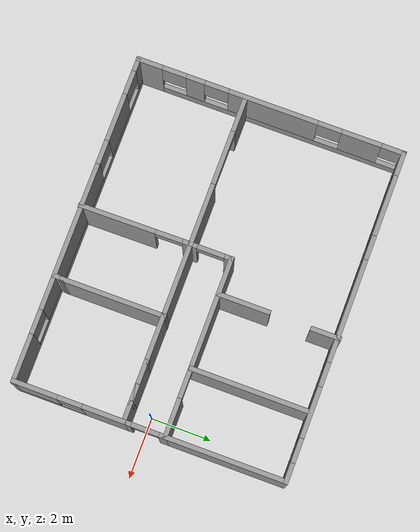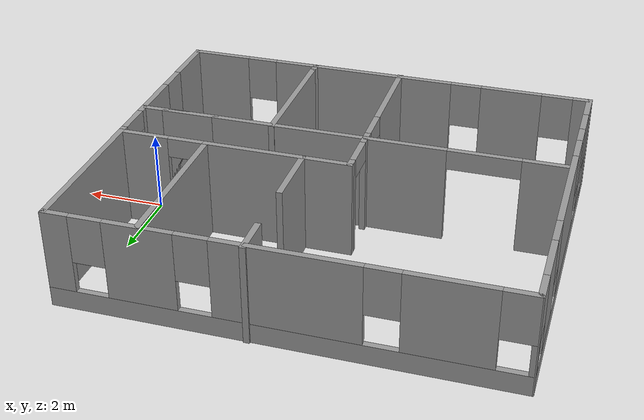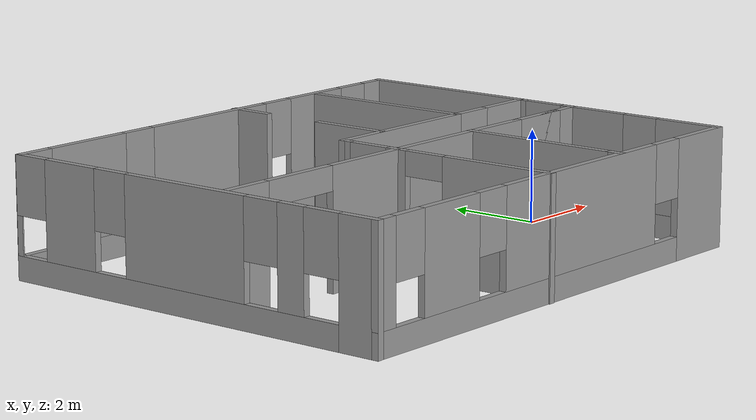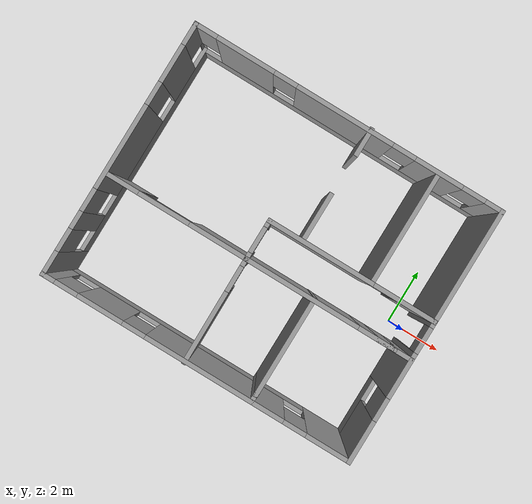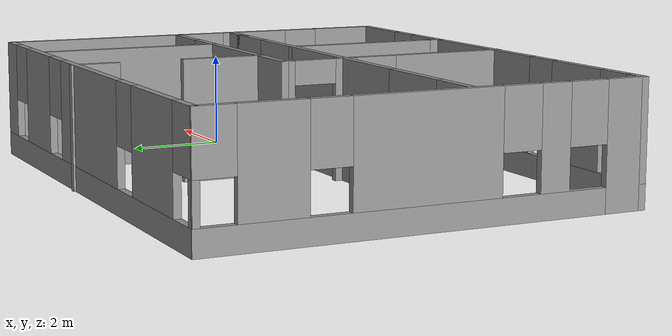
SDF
<?xml version='1.0'?>
<sdf version='1.6'>
  <model name='basic_building'>
    <pose frame=''>-4.885 0.213405 0 0 -0 0</pose>
    <link name='Wall_10'>
      <pose frame=''>2.5 0.516595 0 0 -0 3.14159</pose>
      <visual name='Wall_10_Visual_0'>
        <pose frame=''>-2.33397 0 1.25 0 -0 0</pose>
        <geometry>
          <box>
            <size>1.33205 0.15 2.5</size>
          </box>
        </geometry>
        <material>
          <script>
            <uri>file://media/materials/scripts/gazebo.material</uri>
            <name>Gazebo/Grey</name>
          </script>
          <ambient>1 1 1 1</ambient>
        </material>
        <meta>
          <layer>0</layer>
        </meta>
      </visual>
      <collision name='Wall_10_Collision_0'>
        <geometry>
          <box>
            <size>1.33205 0.15 2.5</size>
          </box>
        </geometry>
        <pose frame=''>-2.33397 0 1.25 0 -0 0</pose>
      </collision>
      <visual name='Wall_10_Visual_1'>
        <pose frame=''>1.11603 0 1.25 0 -0 0</pose>
        <geometry>
          <box>
            <size>3.76795 0.15 2.5</size>
          </box>
        </geometry>
        <material>
          <script>
            <uri>file://media/materials/scripts/gazebo.material</uri>
            <name>Gazebo/Grey</name>
          </script>
          <ambient>1 1 1 1</ambient>
        </material>
        <meta>
          <layer>0</layer>
        </meta>
      </visual>
      <collision name='Wall_10_Collision_1'>
        <geometry>
          <box>
            <size>3.76795 0.15 2.5</size>
          </box>
        </geometry>
        <pose frame=''>1.11603 0 1.25 0 -0 0</pose>
      </collision>
      <visual name='Wall_10_Visual_2'>
        <pose frame=''>-1.21795 0 2.25 0 -0 0</pose>
        <geometry>
          <box>
            <size>0.9 0.15 0.5</size>
          </box>
        </geometry>
        <material>
          <script>
            <uri>file://media/materials/scripts/gazebo.material</uri>
            <name>Gazebo/Grey</name>
          </script>
          <ambient>1 1 1 1</ambient>
        </material>
        <meta>
          <layer>0</layer>
        </meta>
      </visual>
      <collision name='Wall_10_Collision_2'>
        <geometry>
          <box>
            <size>0.9 0.15 0.5</size>
          </box>
        </geometry>
        <pose frame=''>-1.21795 0 2.25 0 -0 0</pose>
      </collision>
    </link>
    <link name='Wall_11'>
      <pose frame=''>-0.424999 -0.158405 0 0 -0 -1.5708</pose>
      <visual name='Wall_11_Visual_0'>
        <pose frame=''>-0.600666 0 1.25 0 -0 0</pose>
        <geometry>
          <box>
            <size>0.298668 0.15 2.5</size>
          </box>
        </geometry>
        <material>
          <script>
            <uri>file://media/materials/scripts/gazebo.material</uri>
            <name>Gazebo/Grey</name>
          </script>
          <ambient>1 1 1 1</ambient>
        </material>
        <meta>
          <layer>0</layer>
        </meta>
      </visual>
      <collision name='Wall_11_Collision_0'>
        <geometry>
          <box>
            <size>0.298668 0.15 2.5</size>
          </box>
        </geometry>
        <pose frame=''>-0.600666 0 1.25 0 -0 0</pose>
      </collision>
      <visual name='Wall_11_Visual_1'>
        <pose frame=''>0.599334 0 1.25 0 -0 0</pose>
        <geometry>
          <box>
            <size>0.301332 0.15 2.5</size>
          </box>
        </geometry>
        <material>
          <script>
            <uri>file://media/materials/scripts/gazebo.material</uri>
            <name>Gazebo/Grey</name>
          </script>
          <ambient>1 1 1 1</ambient>
        </material>
        <meta>
          <layer>0</layer>
        </meta>
      </visual>
      <collision name='Wall_11_Collision_1'>
        <geometry>
          <box>
            <size>0.301332 0.15 2.5</size>
          </box>
        </geometry>
        <pose frame=''>0.599334 0 1.25 0 -0 0</pose>
      </collision>
      <visual name='Wall_11_Visual_2'>
        <pose frame=''>-0.001332 0 2.25 0 -0 0</pose>
        <geometry>
          <box>
            <size>0.9 0.15 0.5</size>
          </box>
        </geometry>
        <material>
          <script>
            <uri>file://media/materials/scripts/gazebo.material</uri>
            <name>Gazebo/Grey</name>
          </script>
          <ambient>1 1 1 1</ambient>
        </material>
        <meta>
          <layer>0</layer>
        </meta>
      </visual>
      <collision name='Wall_11_Collision_2'>
        <geometry>
          <box>
            <size>0.9 0.15 0.5</size>
          </box>
        </geometry>
        <pose frame=''>-0.001332 0 2.25 0 -0 0</pose>
      </collision>
    </link>
    <link name='Wall_12'>
      <collision name='Wall_12_Collision'>
        <geometry>
          <box>
            <size>4.05 0.15 2.5</size>
          </box>
        </geometry>
        <pose frame=''>0 0 1.25 0 -0 0</pose>
      </collision>
      <visual name='Wall_12_Visual'>
        <pose frame=''>0 0 1.25 0 -0 0</pose>
        <geometry>
          <box>
            <size>4.05 0.15 2.5</size>
          </box>
        </geometry>
        <material>
          <script>
            <uri>file://media/materials/scripts/gazebo.material</uri>
            <name>Gazebo/Grey</name>
          </script>
          <ambient>1 1 1 1</ambient>
        </material>
        <meta>
          <layer>0</layer>
        </meta>
      </visual>
      <pose frame=''>1.525 -0.833405 0 0 -0 0</pose>
    </link>
    <link name='Wall_15'>
      <pose frame=''>5.425 -2.63341 0 0 -0 -1.5708</pose>
      <visual name='Wall_15_Visual_0'>
        <pose frame=''>-1.16011 0 1.25 0 -0 0</pose>
        <geometry>
          <box>
            <size>1.42979 0.15 2.5</size>
          </box>
        </geometry>
        <material>
          <script>
            <uri>file://media/materials/scripts/gazebo.material</uri>
            <name>Gazebo/Grey</name>
          </script>
          <ambient>1 1 1 1</ambient>
        </material>
        <meta>
          <layer>0</layer>
        </meta>
      </visual>
      <collision name='Wall_15_Collision_0'>
        <geometry>
          <box>
            <size>1.42979 0.15 2.5</size>
          </box>
        </geometry>
        <pose frame=''>-1.16011 0 1.25 0 -0 0</pose>
      </collision>
      <visual name='Wall_15_Visual_1'>
        <pose frame=''>0.714894 0 0.25 0 -0 0</pose>
        <geometry>
          <box>
            <size>2.32021 0.15 0.5</size>
          </box>
        </geometry>
        <material>
          <script>
            <uri>file://media/materials/scripts/gazebo.material</uri>
            <name>Gazebo/Grey</name>
          </script>
          <ambient>1 1 1 1</ambient>
        </material>
        <meta>
          <layer>0</layer>
        </meta>
      </visual>
      <collision name='Wall_15_Collision_1'>
        <geometry>
          <box>
            <size>2.32021 0.15 0.5</size>
          </box>
        </geometry>
        <pose frame=''>0.714894 0 0.25 0 -0 0</pose>
      </collision>
      <visual name='Wall_15_Visual_2'>
        <pose frame=''>1.11489 0 1.5 0 -0 0</pose>
        <geometry>
          <box>
            <size>1.52021 0.15 2</size>
          </box>
        </geometry>
        <material>
          <script>
            <uri>file://media/materials/scripts/gazebo.material</uri>
            <name>Gazebo/Grey</name>
          </script>
          <ambient>1 1 1 1</ambient>
        </material>
        <meta>
          <layer>0</layer>
        </meta>
      </visual>
      <collision name='Wall_15_Collision_2'>
        <geometry>
          <box>
            <size>1.52021 0.15 2</size>
          </box>
        </geometry>
        <pose frame=''>1.11489 0 1.5 0 -0 0</pose>
      </collision>
      <visual name='Wall_15_Visual_3'>
        <pose frame=''>-0.045213 0 1.9 0 -0 0</pose>
        <geometry>
          <box>
            <size>0.8 0.15 1.2</size>
          </box>
        </geometry>
        <material>
          <script>
            <uri>file://media/materials/scripts/gazebo.material</uri>
            <name>Gazebo/Grey</name>
          </script>
          <ambient>1 1 1 1</ambient>
        </material>
        <meta>
          <layer>0</layer>
        </meta>
      </visual>
      <collision name='Wall_15_Collision_3'>
        <geometry>
          <box>
            <size>0.8 0.15 1.2</size>
          </box>
        </geometry>
        <pose frame=''>-0.045213 0 1.9 0 -0 0</pose>
      </collision>
    </link>
    <link name='Wall_16'>
      <pose frame=''>0 -4.4334 0 0 -0 3.14159</pose>
      <visual name='Wall_16_Visual_0'>
        <pose frame=''>-4.69529 0 1.25 0 -0 0</pose>
        <geometry>
          <box>
            <size>1.60942 0.15 2.5</size>
          </box>
        </geometry>
        <material>
          <script>
            <uri>file://media/materials/scripts/gazebo.material</uri>
            <name>Gazebo/Grey</name>
          </script>
          <ambient>1 1 1 1</ambient>
        </material>
        <meta>
          <layer>0</layer>
        </meta>
      </visual>
      <collision name='Wall_16_Collision_0'>
        <geometry>
          <box>
            <size>1.60942 0.15 2.5</size>
          </box>
        </geometry>
        <pose frame=''>-4.69529 0 1.25 0 -0 0</pose>
      </collision>
      <visual name='Wall_16_Visual_1'>
        <pose frame=''>0.804712 0 0.25 0 -0 0</pose>
        <geometry>
          <box>
            <size>9.39058 0.15 0.5</size>
          </box>
        </geometry>
        <material>
          <script>
            <uri>file://media/materials/scripts/gazebo.material</uri>
            <name>Gazebo/Grey</name>
          </script>
          <ambient>1 1 1 1</ambient>
        </material>
        <meta>
          <layer>0</layer>
        </meta>
      </visual>
      <collision name='Wall_16_Collision_1'>
        <geometry>
          <box>
            <size>9.39058 0.15 0.5</size>
          </box>
        </geometry>
        <pose frame=''>0.804712 0 0.25 0 -0 0</pose>
      </collision>
      <visual name='Wall_16_Visual_2'>
        <pose frame=''>-0.639697 0 1.5 0 -0 0</pose>
        <geometry>
          <box>
            <size>4.90176 0.15 2</size>
          </box>
        </geometry>
        <material>
          <script>
            <uri>file://media/materials/scripts/gazebo.material</uri>
            <name>Gazebo/Grey</name>
          </script>
          <ambient>1 1 1 1</ambient>
        </material>
        <meta>
          <layer>0</layer>
        </meta>
      </visual>
      <collision name='Wall_16_Collision_2'>
        <geometry>
          <box>
            <size>4.90176 0.15 2</size>
          </box>
        </geometry>
        <pose frame=''>-0.639697 0 1.5 0 -0 0</pose>
      </collision>
      <visual name='Wall_16_Visual_3'>
        <pose frame=''>3.40925 0 1.5 0 -0 0</pose>
        <geometry>
          <box>
            <size>1.59614 0.15 2</size>
          </box>
        </geometry>
        <material>
          <script>
            <uri>file://media/materials/scripts/gazebo.material</uri>
            <name>Gazebo/Grey</name>
          </script>
          <ambient>1 1 1 1</ambient>
        </material>
        <meta>
          <layer>0</layer>
        </meta>
      </visual>
      <collision name='Wall_16_Collision_3'>
        <geometry>
          <box>
            <size>1.59614 0.15 2</size>
          </box>
        </geometry>
        <pose frame=''>3.40925 0 1.5 0 -0 0</pose>
      </collision>
      <visual name='Wall_16_Visual_4'>
        <pose frame=''>5.25366 0 1.5 0 -0 0</pose>
        <geometry>
          <box>
            <size>0.492677 0.15 2</size>
          </box>
        </geometry>
        <material>
          <script>
            <uri>file://media/materials/scripts/gazebo.material</uri>
            <name>Gazebo/Grey</name>
          </script>
          <ambient>1 1 1 1</ambient>
        </material>
        <meta>
          <layer>0</layer>
        </meta>
      </visual>
      <collision name='Wall_16_Collision_4'>
        <geometry>
          <box>
            <size>0.492677 0.15 2</size>
          </box>
        </geometry>
        <pose frame=''>5.25366 0 1.5 0 -0 0</pose>
      </collision>
      <visual name='Wall_16_Visual_5'>
        <pose frame=''>-3.49058 0 1.9 0 -0 0</pose>
        <geometry>
          <box>
            <size>0.8 0.15 1.2</size>
          </box>
        </geometry>
        <material>
          <script>
            <uri>file://media/materials/scripts/gazebo.material</uri>
            <name>Gazebo/Grey</name>
          </script>
          <ambient>1 1 1 1</ambient>
        </material>
        <meta>
          <layer>0</layer>
        </meta>
      </visual>
      <collision name='Wall_16_Collision_5'>
        <geometry>
          <box>
            <size>0.8 0.15 1.2</size>
          </box>
        </geometry>
        <pose frame=''>-3.49058 0 1.9 0 -0 0</pose>
      </collision>
      <visual name='Wall_16_Visual_6'>
        <pose frame=''>2.21118 0 1.9 0 -0 0</pose>
        <geometry>
          <box>
            <size>0.8 0.15 1.2</size>
          </box>
        </geometry>
        <material>
          <script>
            <uri>file://media/materials/scripts/gazebo.material</uri>
            <name>Gazebo/Grey</name>
          </script>
          <ambient>1 1 1 1</ambient>
        </material>
        <meta>
          <layer>0</layer>
        </meta>
      </visual>
      <collision name='Wall_16_Collision_6'>
        <geometry>
          <box>
            <size>0.8 0.15 1.2</size>
          </box>
        </geometry>
        <pose frame=''>2.21118 0 1.9 0 -0 0</pose>
      </collision>
      <visual name='Wall_16_Visual_7'>
        <pose frame=''>4.60732 0 1.9 0 -0 0</pose>
        <geometry>
          <box>
            <size>0.8 0.15 1.2</size>
          </box>
        </geometry>
        <material>
          <script>
            <uri>file://media/materials/scripts/gazebo.material</uri>
            <name>Gazebo/Grey</name>
          </script>
          <ambient>1 1 1 1</ambient>
        </material>
        <meta>
          <layer>0</layer>
        </meta>
      </visual>
      <collision name='Wall_16_Collision_7'>
        <geometry>
          <box>
            <size>0.8 0.15 1.2</size>
          </box>
        </geometry>
        <pose frame=''>4.60732 0 1.9 0 -0 0</pose>
      </collision>
    </link>
    <link name='Wall_17'>
      <pose frame=''>-5.425 -0.008405 0 0 -0 1.5708</pose>
      <visual name='Wall_17_Visual_0'>
        <pose frame=''>-4.05471 0 1.25 0 -0 0</pose>
        <geometry>
          <box>
            <size>0.890571 0.15 2.5</size>
          </box>
        </geometry>
        <material>
          <script>
            <uri>file://media/materials/scripts/gazebo.material</uri>
            <name>Gazebo/Grey</name>
          </script>
          <ambient>1 1 1 1</ambient>
        </material>
        <meta>
          <layer>0</layer>
        </meta>
      </visual>
      <collision name='Wall_17_Collision_0'>
        <geometry>
          <box>
            <size>0.890571 0.15 2.5</size>
          </box>
        </geometry>
        <pose frame=''>-4.05471 0 1.25 0 -0 0</pose>
      </collision>
      <visual name='Wall_17_Visual_1'>
        <pose frame=''>0.445285 0 0.25 0 -0 0</pose>
        <geometry>
          <box>
            <size>8.10943 0.15 0.5</size>
          </box>
        </geometry>
        <material>
          <script>
            <uri>file://media/materials/scripts/gazebo.material</uri>
            <name>Gazebo/Grey</name>
          </script>
          <ambient>1 1 1 1</ambient>
        </material>
        <meta>
          <layer>0</layer>
        </meta>
      </visual>
      <collision name='Wall_17_Collision_1'>
        <geometry>
          <box>
            <size>8.10943 0.15 0.5</size>
          </box>
        </geometry>
        <pose frame=''>0.445285 0 0.25 0 -0 0</pose>
      </collision>
      <visual name='Wall_17_Visual_2'>
        <pose frame=''>-2.50108 0 1.5 0 -0 0</pose>
        <geometry>
          <box>
            <size>0.616695 0.15 2</size>
          </box>
        </geometry>
        <material>
          <script>
            <uri>file://media/materials/scripts/gazebo.material</uri>
            <name>Gazebo/Grey</name>
          </script>
          <ambient>1 1 1 1</ambient>
        </material>
        <meta>
          <layer>0</layer>
        </meta>
      </visual>
      <collision name='Wall_17_Collision_2'>
        <geometry>
          <box>
            <size>0.616695 0.15 2</size>
          </box>
        </geometry>
        <pose frame=''>-2.50108 0 1.5 0 -0 0</pose>
      </collision>
      <visual name='Wall_17_Visual_3'>
        <pose frame=''>0.092287 0 1.5 0 -0 0</pose>
        <geometry>
          <box>
            <size>2.97004 0.15 2</size>
          </box>
        </geometry>
        <material>
          <script>
            <uri>file://media/materials/scripts/gazebo.material</uri>
            <name>Gazebo/Grey</name>
          </script>
          <ambient>1 1 1 1</ambient>
        </material>
        <meta>
          <layer>0</layer>
        </meta>
      </visual>
      <collision name='Wall_17_Collision_3'>
        <geometry>
          <box>
            <size>2.97004 0.15 2</size>
          </box>
        </geometry>
        <pose frame=''>0.092287 0 1.5 0 -0 0</pose>
      </collision>
      <visual name='Wall_17_Visual_4'>
        <pose frame=''>3.03546 0 1.5 0 -0 0</pose>
        <geometry>
          <box>
            <size>1.3163 0.15 2</size>
          </box>
        </geometry>
        <material>
          <script>
            <uri>file://media/materials/scripts/gazebo.material</uri>
            <name>Gazebo/Grey</name>
          </script>
          <ambient>1 1 1 1</ambient>
        </material>
        <meta>
          <layer>0</layer>
        </meta>
      </visual>
      <collision name='Wall_17_Collision_4'>
        <geometry>
          <box>
            <size>1.3163 0.15 2</size>
          </box>
        </geometry>
        <pose frame=''>3.03546 0 1.5 0 -0 0</pose>
      </collision>
      <visual name='Wall_17_Visual_5'>
        <pose frame=''>4.4968 0 1.5 0 -0 0</pose>
        <geometry>
          <box>
            <size>0.006394 0.15 2</size>
          </box>
        </geometry>
        <material>
          <script>
            <uri>file://media/materials/scripts/gazebo.material</uri>
            <name>Gazebo/Grey</name>
          </script>
          <ambient>1 1 1 1</ambient>
        </material>
        <meta>
          <layer>0</layer>
        </meta>
      </visual>
      <collision name='Wall_17_Collision_5'>
        <geometry>
          <box>
            <size>0.006394 0.15 2</size>
          </box>
        </geometry>
        <pose frame=''>4.4968 0 1.5 0 -0 0</pose>
      </collision>
      <visual name='Wall_17_Visual_6'>
        <pose frame=''>-3.20943 0 1.9 0 -0 0</pose>
        <geometry>
          <box>
            <size>0.8 0.15 1.2</size>
          </box>
        </geometry>
        <material>
          <script>
            <uri>file://media/materials/scripts/gazebo.material</uri>
            <name>Gazebo/Grey</name>
          </script>
          <ambient>1 1 1 1</ambient>
        </material>
        <meta>
          <layer>0</layer>
        </meta>
      </visual>
      <collision name='Wall_17_Collision_6'>
        <geometry>
          <box>
            <size>0.8 0.15 1.2</size>
          </box>
        </geometry>
        <pose frame=''>-3.20943 0 1.9 0 -0 0</pose>
      </collision>
      <visual name='Wall_17_Visual_7'>
        <pose frame=''>-1.79273 0 1.9 0 -0 0</pose>
        <geometry>
          <box>
            <size>0.8 0.15 1.2</size>
          </box>
        </geometry>
        <material>
          <script>
            <uri>file://media/materials/scripts/gazebo.material</uri>
            <name>Gazebo/Grey</name>
          </script>
          <ambient>1 1 1 1</ambient>
        </material>
        <meta>
          <layer>0</layer>
        </meta>
      </visual>
      <collision name='Wall_17_Collision_7'>
        <geometry>
          <box>
            <size>0.8 0.15 1.2</size>
          </box>
        </geometry>
        <pose frame=''>-1.79273 0 1.9 0 -0 0</pose>
      </collision>
      <visual name='Wall_17_Visual_8'>
        <pose frame=''>1.97731 0 1.9 0 -0 0</pose>
        <geometry>
          <box>
            <size>0.8 0.15 1.2</size>
          </box>
        </geometry>
        <material>
          <script>
            <uri>file://media/materials/scripts/gazebo.material</uri>
            <name>Gazebo/Grey</name>
          </script>
          <ambient>1 1 1 1</ambient>
        </material>
        <meta>
          <layer>0</layer>
        </meta>
      </visual>
      <collision name='Wall_17_Collision_8'>
        <geometry>
          <box>
            <size>0.8 0.15 1.2</size>
          </box>
        </geometry>
        <pose frame=''>1.97731 0 1.9 0 -0 0</pose>
      </collision>
      <visual name='Wall_17_Visual_9'>
        <pose frame=''>4.09361 0 1.9 0 -0 0</pose>
        <geometry>
          <box>
            <size>0.8 0.15 1.2</size>
          </box>
        </geometry>
        <material>
          <script>
            <uri>file://media/materials/scripts/gazebo.material</uri>
            <name>Gazebo/Grey</name>
          </script>
          <ambient>1 1 1 1</ambient>
        </material>
        <meta>
          <layer>0</layer>
        </meta>
      </visual>
      <collision name='Wall_17_Collision_9'>
        <geometry>
          <box>
            <size>0.8 0.15 1.2</size>
          </box>
        </geometry>
        <pose frame=''>4.09361 0 1.9 0 -0 0</pose>
      </collision>
    </link>
    <link name='Wall_18'>
      <pose frame=''>0 4.4166 0 0 -0 0</pose>
      <visual name='Wall_18_Visual_0'>
        <pose frame=''>-5.48552 0 1.25 0 -0 0</pose>
        <geometry>
          <box>
            <size>0.028956 0.15 2.5</size>
          </box>
        </geometry>
        <material>
          <script>
            <uri>file://media/materials/scripts/gazebo.material</uri>
            <name>Gazebo/Grey</name>
          </script>
          <ambient>1 1 1 1</ambient>
        </material>
        <meta>
          <layer>0</layer>
        </meta>
      </visual>
      <collision name='Wall_18_Collision_0'>
        <geometry>
          <box>
            <size>0.028956 0.15 2.5</size>
          </box>
        </geometry>
        <pose frame=''>-5.48552 0 1.25 0 -0 0</pose>
      </collision>
      <visual name='Wall_18_Visual_1'>
        <pose frame=''>0.014478 0 0.25 0 -0 0</pose>
        <geometry>
          <box>
            <size>10.971 0.15 0.5</size>
          </box>
        </geometry>
        <material>
          <script>
            <uri>file://media/materials/scripts/gazebo.material</uri>
            <name>Gazebo/Grey</name>
          </script>
          <ambient>1 1 1 1</ambient>
        </material>
        <meta>
          <layer>0</layer>
        </meta>
      </visual>
      <collision name='Wall_18_Collision_1'>
        <geometry>
          <box>
            <size>10.971 0.15 0.5</size>
          </box>
        </geometry>
        <pose frame=''>0.014478 0 0.25 0 -0 0</pose>
      </collision>
      <visual name='Wall_18_Visual_2'>
        <pose frame=''>-3.65435 0 1.5 0 -0 0</pose>
        <geometry>
          <box>
            <size>2.03339 0.15 2</size>
          </box>
        </geometry>
        <material>
          <script>
            <uri>file://media/materials/scripts/gazebo.material</uri>
            <name>Gazebo/Grey</name>
          </script>
          <ambient>1 1 1 1</ambient>
        </material>
        <meta>
          <layer>0</layer>
        </meta>
      </visual>
      <collision name='Wall_18_Collision_2'>
        <geometry>
          <box>
            <size>2.03339 0.15 2</size>
          </box>
        </geometry>
        <pose frame=''>-3.65435 0 1.5 0 -0 0</pose>
      </collision>
      <visual name='Wall_18_Visual_3'>
        <pose frame=''>-0.138846 0 1.5 0 -0 0</pose>
        <geometry>
          <box>
            <size>3.39762 0.15 2</size>
          </box>
        </geometry>
        <material>
          <script>
            <uri>file://media/materials/scripts/gazebo.material</uri>
            <name>Gazebo/Grey</name>
          </script>
          <ambient>1 1 1 1</ambient>
        </material>
        <meta>
          <layer>0</layer>
        </meta>
      </visual>
      <collision name='Wall_18_Collision_3'>
        <geometry>
          <box>
            <size>3.39762 0.15 2</size>
          </box>
        </geometry>
        <pose frame=''>-0.138846 0 1.5 0 -0 0</pose>
      </collision>
      <visual name='Wall_18_Visual_4'>
        <pose frame=''>3.19301 0 1.5 0 -0 0</pose>
        <geometry>
          <box>
            <size>1.6661 0.15 2</size>
          </box>
        </geometry>
        <material>
          <script>
            <uri>file://media/materials/scripts/gazebo.material</uri>
            <name>Gazebo/Grey</name>
          </script>
          <ambient>1 1 1 1</ambient>
        </material>
        <meta>
          <layer>0</layer>
        </meta>
      </visual>
      <collision name='Wall_18_Collision_4'>
        <geometry>
          <box>
            <size>1.6661 0.15 2</size>
          </box>
        </geometry>
        <pose frame=''>3.19301 0 1.5 0 -0 0</pose>
      </collision>
      <visual name='Wall_18_Visual_5'>
        <pose frame=''>5.16303 0 1.5 0 -0 0</pose>
        <geometry>
          <box>
            <size>0.67394 0.15 2</size>
          </box>
        </geometry>
        <material>
          <script>
            <uri>file://media/materials/scripts/gazebo.material</uri>
            <name>Gazebo/Grey</name>
          </script>
          <ambient>1 1 1 1</ambient>
        </material>
        <meta>
          <layer>0</layer>
        </meta>
      </visual>
      <collision name='Wall_18_Collision_5'>
        <geometry>
          <box>
            <size>0.67394 0.15 2</size>
          </box>
        </geometry>
        <pose frame=''>5.16303 0 1.5 0 -0 0</pose>
      </collision>
      <visual name='Wall_18_Visual_6'>
        <pose frame=''>-5.07104 0 1.9 0 -0 0</pose>
        <geometry>
          <box>
            <size>0.8 0.15 1.2</size>
          </box>
        </geometry>
        <material>
          <script>
            <uri>file://media/materials/scripts/gazebo.material</uri>
            <name>Gazebo/Grey</name>
          </script>
          <ambient>1 1 1 1</ambient>
        </material>
        <meta>
          <layer>0</layer>
        </meta>
      </visual>
      <collision name='Wall_18_Collision_6'>
        <geometry>
          <box>
            <size>0.8 0.15 1.2</size>
          </box>
        </geometry>
        <pose frame=''>-5.07104 0 1.9 0 -0 0</pose>
      </collision>
      <visual name='Wall_18_Visual_7'>
        <pose frame=''>-2.23765 0 1.9 0 -0 0</pose>
        <geometry>
          <box>
            <size>0.8 0.15 1.2</size>
          </box>
        </geometry>
        <material>
          <script>
            <uri>file://media/materials/scripts/gazebo.material</uri>
            <name>Gazebo/Grey</name>
          </script>
          <ambient>1 1 1 1</ambient>
        </material>
        <meta>
          <layer>0</layer>
        </meta>
      </visual>
      <collision name='Wall_18_Collision_7'>
        <geometry>
          <box>
            <size>0.8 0.15 1.2</size>
          </box>
        </geometry>
        <pose frame=''>-2.23765 0 1.9 0 -0 0</pose>
      </collision>
      <visual name='Wall_18_Visual_8'>
        <pose frame=''>1.95996 0 1.9 0 -0 0</pose>
        <geometry>
          <box>
            <size>0.8 0.15 1.2</size>
          </box>
        </geometry>
        <material>
          <script>
            <uri>file://media/materials/scripts/gazebo.material</uri>
            <name>Gazebo/Grey</name>
          </script>
          <ambient>1 1 1 1</ambient>
        </material>
        <meta>
          <layer>0</layer>
        </meta>
      </visual>
      <collision name='Wall_18_Collision_8'>
        <geometry>
          <box>
            <size>0.8 0.15 1.2</size>
          </box>
        </geometry>
        <pose frame=''>1.95996 0 1.9 0 -0 0</pose>
      </collision>
      <visual name='Wall_18_Visual_9'>
        <pose frame=''>4.42606 0 1.9 0 -0 0</pose>
        <geometry>
          <box>
            <size>0.8 0.15 1.2</size>
          </box>
        </geometry>
        <material>
          <script>
            <uri>file://media/materials/scripts/gazebo.material</uri>
            <name>Gazebo/Grey</name>
          </script>
          <ambient>1 1 1 1</ambient>
        </material>
        <meta>
          <layer>0</layer>
        </meta>
      </visual>
      <collision name='Wall_18_Collision_9'>
        <geometry>
          <box>
            <size>0.8 0.15 1.2</size>
          </box>
        </geometry>
        <pose frame=''>4.42606 0 1.9 0 -0 0</pose>
      </collision>
    </link>
    <link name='Wall_19'>
      <collision name='Wall_19_Collision'>
        <geometry>
          <box>
            <size>4.05 0.15 2.5</size>
          </box>
        </geometry>
        <pose frame=''>0 0 1.25 0 -0 0</pose>
      </collision>
      <visual name='Wall_19_Visual'>
        <pose frame=''>0 0 1.25 0 -0 0</pose>
        <geometry>
          <box>
            <size>4.05 0.15 2.5</size>
          </box>
        </geometry>
        <material>
          <script>
            <uri>file://media/materials/scripts/gazebo.material</uri>
            <name>Gazebo/Grey</name>
          </script>
          <ambient>1 1 1 1</ambient>
        </material>
        <meta>
          <layer>0</layer>
        </meta>
      </visual>
      <pose frame=''>5.425 2.46659 0 0 -0 -1.5708</pose>
    </link>
    <link name='Wall_22'>
      <collision name='Wall_22_Collision'>
        <geometry>
          <box>
            <size>4 0.15 2.5</size>
          </box>
        </geometry>
        <pose frame=''>0 0 1.25 0 -0 0</pose>
      </collision>
      <visual name='Wall_22_Visual'>
        <pose frame=''>0 0 1.25 0 -0 0</pose>
        <geometry>
          <box>
            <size>4 0.15 2.5</size>
          </box>
        </geometry>
        <material>
          <script>
            <uri>file://media/materials/scripts/gazebo.material</uri>
            <name>Gazebo/Grey</name>
          </script>
          <ambient>1 1 1 1</ambient>
        </material>
        <meta>
          <layer>0</layer>
        </meta>
      </visual>
      <pose frame=''>3.19325 2.46753 0 0 -0 1.5708</pose>
    </link>
    <link name='Wall_24'>
      <collision name='Wall_24_Collision'>
        <geometry>
          <box>
            <size>3.5 0.15 2.5</size>
          </box>
        </geometry>
        <pose frame=''>0 0 1.25 0 -0 0</pose>
      </collision>
      <visual name='Wall_24_Visual'>
        <pose frame=''>0 0 1.25 0 -0 0</pose>
        <geometry>
          <box>
            <size>3.5 0.15 2.5</size>
          </box>
        </geometry>
        <material>
          <script>
            <uri>file://media/materials/scripts/gazebo.material</uri>
            <name>Gazebo/Grey</name>
          </script>
          <ambient>1 1 1 1</ambient>
        </material>
        <meta>
          <layer>0</layer>
        </meta>
      </visual>
      <pose frame=''>1.96894 -2.4967 0 0 -0 -1.5708</pose>
    </link>
    <link name='Wall_26'>
      <collision name='Wall_26_Collision'>
        <geometry>
          <box>
            <size>1.75 0.15 2.5</size>
          </box>
        </geometry>
        <pose frame=''>0 0 1.25 0 -0 0</pose>
      </collision>
      <visual name='Wall_26_Visual'>
        <pose frame=''>0 0 1.25 0 -0 0</pose>
        <geometry>
          <box>
            <size>1.75 0.15 2.5</size>
          </box>
        </geometry>
        <material>
          <script>
            <uri>file://media/materials/scripts/gazebo.material</uri>
            <name>Gazebo/Grey</name>
          </script>
          <ambient>1 1 1 1</ambient>
        </material>
        <meta>
          <layer>0</layer>
        </meta>
      </visual>
      <pose frame=''>0.744637 1.34253 0 0 -0 1.5708</pose>
    </link>
    <link name='Wall_28'>
      <collision name='Wall_28_Collision'>
        <geometry>
          <box>
            <size>1 0.15 2.5</size>
          </box>
        </geometry>
        <pose frame=''>0 0 1.25 0 -0 0</pose>
      </collision>
      <visual name='Wall_28_Visual'>
        <pose frame=''>0 0 1.25 0 -0 0</pose>
        <geometry>
          <box>
            <size>1 0.15 2.5</size>
          </box>
        </geometry>
        <material>
          <script>
            <uri>file://media/materials/scripts/gazebo.material</uri>
            <name>Gazebo/Grey</name>
          </script>
          <ambient>1 1 1 1</ambient>
        </material>
        <meta>
          <layer>0</layer>
        </meta>
      </visual>
      <pose frame=''>0.762127 4.0353 0 0 -0 -1.5708</pose>
    </link>
    <link name='Wall_32'>
      <pose frame=''>-0.408608 -2.64652 0 0 -0 1.57984</pose>
      <visual name='Wall_32_Visual_0'>
        <pose frame=''>-0.61493 0 1.25 0 -0 0</pose>
        <geometry>
          <box>
            <size>2.54651 0.15 2.5</size>
          </box>
        </geometry>
        <material>
          <script>
            <uri>file://media/materials/scripts/gazebo.material</uri>
            <name>Gazebo/Grey</name>
          </script>
          <ambient>1 1 1 1</ambient>
        </material>
        <meta>
          <layer>0</layer>
        </meta>
      </visual>
      <collision name='Wall_32_Collision_0'>
        <geometry>
          <box>
            <size>2.54651 0.15 2.5</size>
          </box>
        </geometry>
        <pose frame=''>-0.61493 0 1.25 0 -0 0</pose>
      </collision>
      <visual name='Wall_32_Visual_1'>
        <pose frame=''>1.72326 0 1.25 0 -0 0</pose>
        <geometry>
          <box>
            <size>0.32986 0.15 2.5</size>
          </box>
        </geometry>
        <material>
          <script>
            <uri>file://media/materials/scripts/gazebo.material</uri>
            <name>Gazebo/Grey</name>
          </script>
          <ambient>1 1 1 1</ambient>
        </material>
        <meta>
          <layer>0</layer>
        </meta>
      </visual>
      <collision name='Wall_32_Collision_1'>
        <geometry>
          <box>
            <size>0.32986 0.15 2.5</size>
          </box>
        </geometry>
        <pose frame=''>1.72326 0 1.25 0 -0 0</pose>
      </collision>
      <visual name='Wall_32_Visual_2'>
        <pose frame=''>1.10833 0 2.25 0 -0 0</pose>
        <geometry>
          <box>
            <size>0.9 0.15 0.5</size>
          </box>
        </geometry>
        <material>
          <script>
            <uri>file://media/materials/scripts/gazebo.material</uri>
            <name>Gazebo/Grey</name>
          </script>
          <ambient>1 1 1 1</ambient>
        </material>
        <meta>
          <layer>0</layer>
        </meta>
      </visual>
      <collision name='Wall_32_Collision_2'>
        <geometry>
          <box>
            <size>0.9 0.15 0.5</size>
          </box>
        </geometry>
        <pose frame=''>1.10833 0 2.25 0 -0 0</pose>
      </collision>
    </link>
    <link name='Wall_34'>
      <collision name='Wall_34_Collision'>
        <geometry>
          <box>
            <size>0.403557 0.15 2.5</size>
          </box>
        </geometry>
        <pose frame=''>0 0 1.25 0 -0 0</pose>
      </collision>
      <visual name='Wall_34_Visual'>
        <pose frame=''>0 0 1.25 0 -0 0</pose>
        <geometry>
          <box>
            <size>0.403557 0.15 2.5</size>
          </box>
        </geometry>
        <material>
          <script>
            <uri>file://media/materials/scripts/gazebo.material</uri>
            <name>Gazebo/Grey</name>
          </script>
          <ambient>1 1 1 1</ambient>
        </material>
        <meta>
          <layer>0</layer>
        </meta>
      </visual>
      <pose frame=''>1.9602 -4.29817 0 0 -0 1.50176</pose>
    </link>
    <link name='Wall_36'>
      <pose frame=''>-2.85 -0.833405 0 0 -0 3.14159</pose>
      <visual name='Wall_36_Visual_0'>
        <pose frame=''>-1.45098 0 1.25 0 -0 0</pose>
        <geometry>
          <box>
            <size>2.09804 0.15 2.5</size>
          </box>
        </geometry>
        <material>
          <script>
            <uri>file://media/materials/scripts/gazebo.material</uri>
            <name>Gazebo/Grey</name>
          </script>
          <ambient>1 1 1 1</ambient>
        </material>
        <meta>
          <layer>0</layer>
        </meta>
      </visual>
      <collision name='Wall_36_Collision_0'>
        <geometry>
          <box>
            <size>2.09804 0.15 2.5</size>
          </box>
        </geometry>
        <pose frame=''>-1.45098 0 1.25 0 -0 0</pose>
      </collision>
      <visual name='Wall_36_Visual_1'>
        <pose frame=''>1.94902 0 1.25 0 -0 0</pose>
        <geometry>
          <box>
            <size>1.10196 0.15 2.5</size>
          </box>
        </geometry>
        <material>
          <script>
            <uri>file://media/materials/scripts/gazebo.material</uri>
            <name>Gazebo/Grey</name>
          </script>
          <ambient>1 1 1 1</ambient>
        </material>
        <meta>
          <layer>0</layer>
        </meta>
      </visual>
      <collision name='Wall_36_Collision_1'>
        <geometry>
          <box>
            <size>1.10196 0.15 2.5</size>
          </box>
        </geometry>
        <pose frame=''>1.94902 0 1.25 0 -0 0</pose>
      </collision>
      <visual name='Wall_36_Visual_2'>
        <pose frame=''>0.498038 0 2.25 0 -0 0</pose>
        <geometry>
          <box>
            <size>1.8 0.15 0.5</size>
          </box>
        </geometry>
        <material>
          <script>
            <uri>file://media/materials/scripts/gazebo.material</uri>
            <name>Gazebo/Grey</name>
          </script>
          <ambient>1 1 1 1</ambient>
        </material>
        <meta>
          <layer>0</layer>
        </meta>
      </visual>
      <collision name='Wall_36_Collision_2'>
        <geometry>
          <box>
            <size>1.8 0.15 0.5</size>
          </box>
        </geometry>
        <pose frame=''>0.498038 0 2.25 0 -0 0</pose>
      </collision>
    </link>
    <link name='Wall_6'>
      <pose frame=''>4.15 -0.833405 0 0 -0 0</pose>
      <visual name='Wall_6_Visual_0'>
        <pose frame=''>0 0 1.25 0 -0 0</pose>
        <geometry>
          <box>
            <size>1.5 0.15 2.5</size>
          </box>
        </geometry>
        <material>
          <script>
            <uri>file://media/materials/scripts/gazebo.material</uri>
            <name>Gazebo/Grey</name>
          </script>
          <ambient>1 1 1 1</ambient>
        </material>
        <meta>
          <layer>0</layer>
        </meta>
      </visual>
      <collision name='Wall_6_Collision_0'>
        <geometry>
          <box>
            <size>1.5 0.15 2.5</size>
          </box>
        </geometry>
        <pose frame=''>0 0 1.25 0 -0 0</pose>
      </collision>
      <visual name='Wall_6_Visual_1'>
        <pose frame=''>0.401464 0 1.25 0 -0 0</pose>
        <geometry>
          <box>
            <size>0.697073 0.15 2.5</size>
          </box>
        </geometry>
        <material>
          <script>
            <uri>file://media/materials/scripts/gazebo.material</uri>
            <name>Gazebo/Grey</name>
          </script>
          <ambient>1 1 1 1</ambient>
        </material>
        <meta>
          <layer>0</layer>
        </meta>
      </visual>
      <collision name='Wall_6_Collision_1'>
        <geometry>
          <box>
            <size>0.697073 0.15 2.5</size>
          </box>
        </geometry>
        <pose frame=''>0.401464 0 1.25 0 -0 0</pose>
      </collision>
    </link>
    <link name='Wall_8'>
      <collision name='Wall_8_Collision'>
        <geometry>
          <box>
            <size>0.75 0.15 2.5</size>
          </box>
        </geometry>
        <pose frame=''>0 0 1.25 0 -0 0</pose>
      </collision>
      <visual name='Wall_8_Visual'>
        <pose frame=''>0 0 1.25 0 -0 0</pose>
        <geometry>
          <box>
            <size>0.75 0.15 2.5</size>
          </box>
        </geometry>
        <material>
          <script>
            <uri>file://media/materials/scripts/gazebo.material</uri>
            <name>Gazebo/Grey</name>
          </script>
          <ambient>1 1 1 1</ambient>
        </material>
        <meta>
          <layer>0</layer>
        </meta>
      </visual>
      <pose frame=''>5.125 -0.833405 0 0 -0 0</pose>
    </link>
    <link name='Wall_9'>
      <pose frame=''>5.425 -0.158405 0 0 -0 1.5708</pose>
      <visual name='Wall_9_Visual_0'>
        <pose frame=''>-0.590589 0 1.25 0 -0 0</pose>
        <geometry>
          <box>
            <size>0.318822 0.15 2.5</size>
          </box>
        </geometry>
        <material>
          <script>
            <uri>file://media/materials/scripts/gazebo.material</uri>
            <name>Gazebo/Grey</name>
          </script>
          <ambient>1 1 1 1</ambient>
        </material>
        <meta>
          <layer>0</layer>
        </meta>
      </visual>
      <collision name='Wall_9_Collision_0'>
        <geometry>
          <box>
            <size>0.318822 0.15 2.5</size>
          </box>
        </geometry>
        <pose frame=''>-0.590589 0 1.25 0 -0 0</pose>
      </collision>
      <visual name='Wall_9_Visual_1'>
        <pose frame=''>0.609411 0 1.25 0 -0 0</pose>
        <geometry>
          <box>
            <size>0.281178 0.15 2.5</size>
          </box>
        </geometry>
        <material>
          <script>
            <uri>file://media/materials/scripts/gazebo.material</uri>
            <name>Gazebo/Grey</name>
          </script>
          <ambient>1 1 1 1</ambient>
        </material>
        <meta>
          <layer>0</layer>
        </meta>
      </visual>
      <collision name='Wall_9_Collision_1'>
        <geometry>
          <box>
            <size>0.281178 0.15 2.5</size>
          </box>
        </geometry>
        <pose frame=''>0.609411 0 1.25 0 -0 0</pose>
      </collision>
      <visual name='Wall_9_Visual_2'>
        <pose frame=''>0.018822 0 2.25 0 -0 0</pose>
        <geometry>
          <box>
            <size>0.9 0.15 0.5</size>
          </box>
        </geometry>
        <material>
          <script>
            <uri>file://media/materials/scripts/gazebo.material</uri>
            <name>Gazebo/Grey</name>
          </script>
          <ambient>1 1 1 1</ambient>
        </material>
        <meta>
          <layer>0</layer>
        </meta>
      </visual>
      <collision name='Wall_9_Collision_2'>
        <geometry>
          <box>
            <size>0.9 0.15 0.5</size>
          </box>
        </geometry>
        <pose frame=''>0.018822 0 2.25 0 -0 0</pose>
      </collision>
    </link>
    <static>1</static>
  </model>
</sdf>
